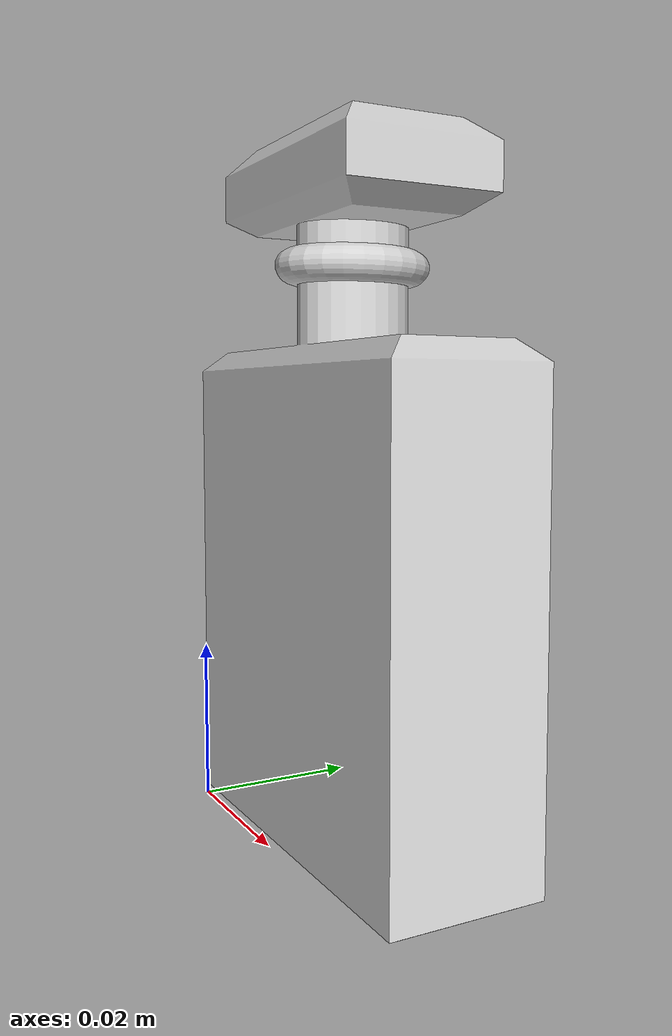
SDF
<?xml version="1.0" ?>
<sdf version="1.4">
  <model name="z_dior">
    <link name="z_dior_link">
      <inertial>
        <pose>-0.00 0.0 -0.005 0 0 0</pose>
        <mass>0.8</mass>
        <inertia>
          <ixx>0.001667</ixx>
	  <ixy>0.0</ixy>
	  <ixz>0.0</ixz>
	  <iyy>0.001667</iyy>
	  <iyz>0.0</iyz>
	  <izz>0.001667</izz>
	</inertia>
      </inertial>

      <visual name="z_dior_visual">
        <pose>0 0 0 0 0 0 </pose>
        <material>
	  <lighting>1</lighting>
	  <ambient>0.2 0.2 0.2 1</ambient>
	  <diffuse>0.8 0.8 0.8 1</diffuse>
	  <specular>0.2 0.2 0.2 1</specular>
	  <emissive>0.85 0.85 0.85 1</emissive>
          <script>
            <uri>model://z_dior/materials/scripts</uri>
            <uri>model://z_dior/materials/textures</uri>
            <name>z_dior/Image</name>
          </script>
        </material>
        <geometry>
          <mesh>
            <uri>model://z_dior/meshes/z_dior.dae</uri>
	    <scale>0.4 0.4 0.4</scale>
          </mesh>
        </geometry>
      </visual>

      <collision name="z_dior_collision">
        <pose>-0.0 0.0 +0.015 0.0 0.0 0.0</pose>
        <geometry>
	  <cylinder>
	    <radius>0.042</radius>
	    <length>0.04</length>
	  </cylinder>
        </geometry>
        <max_contacts>10</max_contacts>
        <surface>
          <contact>
	    <ode>
	      <max_vel>0.000</max_vel>
            </ode>
          </contact>
          <bounce/>
          <friction>
            <torsional>
              <ode/>
            </torsional>
            <ode>
              <mu>1</mu>
              <mu2>1</mu2>
            </ode>
          </friction>
        </surface>
      </collision>
      <self_collide>0</self_collide>
      <kinematic>0</kinematic>
    </link>
  </model>
</sdf>
